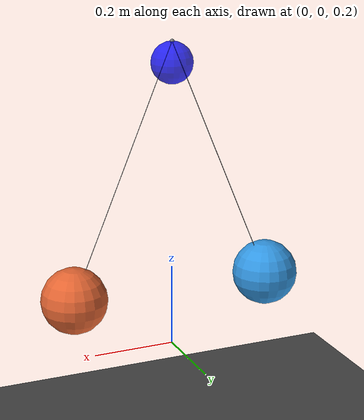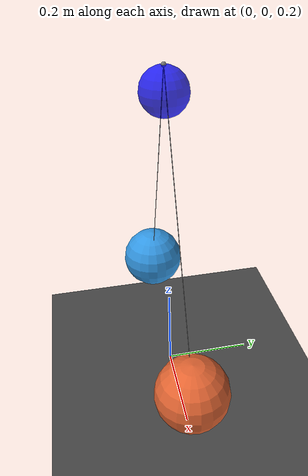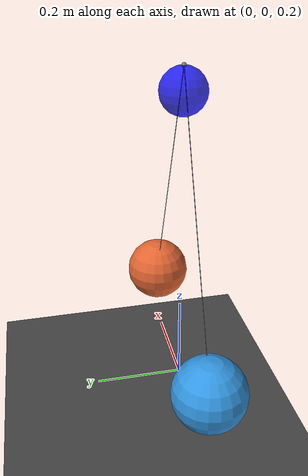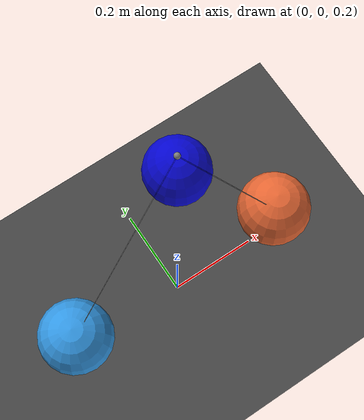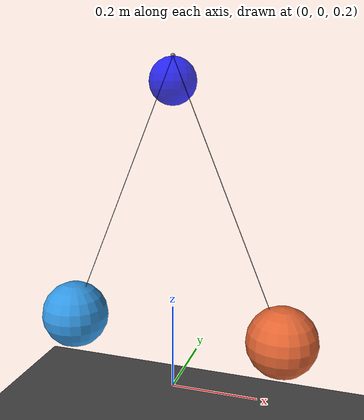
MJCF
<mujoco model="sphere_translate">
  <option timestep="0.01" gravity="0 0 -9.81"/>

  <asset>
    <texture
      name="grid_tex"
      type="2d"
      builtin="checker"
      width="512"
      height="512"
      rgb1="0.2 0.2 0.2"
      rgb2="0.35 0.35 0.35"/>
    <material
      name="grid_mat"
      texture="grid_tex"
      texuniform="true"
      texrepeat="8 8"
      reflectance="0.05"/>
  </asset>

  <worldbody>
    <light
      name="key_light"
      pos="1.5 -1.5 3.0"
      dir="-0.4 0.4 -1.0"
      directional="true"
      diffuse="0.9 0.9 0.9"
      specular="0.2 0.2 0.2"/>
    <geom
      name="floor"
      type="plane"
      size="5 5 0.1"
      material="grid_mat"
      friction="1.0 0.1 0.1"/>

    <body name="sphere_1" pos="-0.25 0.0 0.35">
      <joint name="tx1" type="slide" axis="1 0 0" damping="1"/>
      <joint name="ty1" type="slide" axis="0 1 0" damping="1"/>
      <joint name="tz1" type="slide" axis="0 0 1" damping="1"/>
      <geom
        name="sphere_geom_1"
        type="sphere"
        size="0.08"
        mass="1.0"
        rgba="0.2 0.6 0.9 1"/>
      <site name="payload_point_sphere_1" pos="0.0 0.0 0.0"/>
    </body>

    <body name="sphere_2" pos="0.25 0.0 0.35">
      <joint name="tx2" type="slide" axis="1 0 0" damping="1"/>
      <joint name="ty2" type="slide" axis="0 1 0" damping="1"/>
      <joint name="tz2" type="slide" axis="0 0 1" damping="1"/>
      <geom
        name="sphere_geom_2"
        type="sphere"
        size="0.08"
        mass="1.0"
        rgba="0.9 0.4 0.2 1"/>
      <site name="payload_point_sphere_2" pos="0.0 0.0 0.0"/>
    </body>

    <body name="payload" pos="0.0 0.0 0.9">
      <joint name="payload" pos="0 0 0" type="free" damping="0.001"/>
      <geom
        name="payload_geom"
        type="sphere"
        size="0.05 0.05 0.05"
        rgba="0 0 1 0.8"
        mass="0.5"
        friction="1.0 0.005 0.0001"/>
      <site name="payload_point" pos="0.0 0.0 0.05"/>
    </body>
  </worldbody>

  <actuator>
    <motor
      name="tx1"
      joint="tx1"
      ctrllimited="true"
      ctrlrange="-200 200"/>
    <motor
      name="ty1"
      joint="ty1"
      ctrllimited="true"
      ctrlrange="-200 200"/>
    <motor
      name="tz1"
      joint="tz1"
      ctrllimited="true"
      ctrlrange="-200 200"/>

    <motor
      name="tx2"
      joint="tx2"
      ctrllimited="true"
      ctrlrange="-200 200"/>
    <motor
      name="ty2"
      joint="ty2"
      ctrllimited="true"
      ctrlrange="-200 200"/>
    <motor
      name="tz2"
      joint="tz2"
      ctrllimited="true"
      ctrlrange="-200 200"/>
  </actuator>

  <tendon>
    <spatial name="rope_sphere_1" limited="true" range="0 1.0" width=".0007">
      <site site="payload_point_sphere_1"/>
      <site site="payload_point"/>
    </spatial>
    <spatial name="rope_sphere_2" limited="true" range="0 1.0" width=".0007">
      <site site="payload_point_sphere_2"/>
      <site site="payload_point"/>
    </spatial>
  </tendon>
</mujoco>
